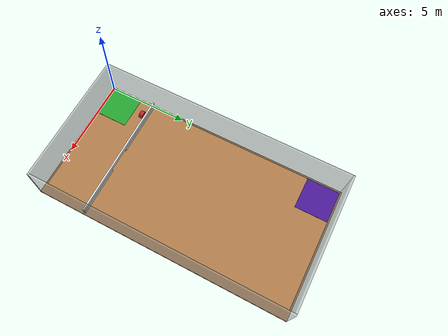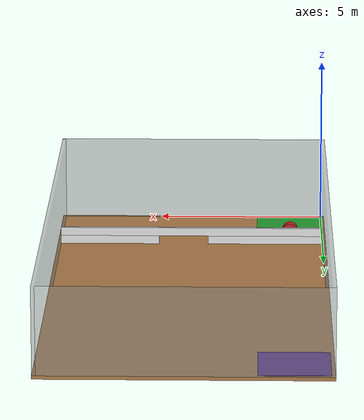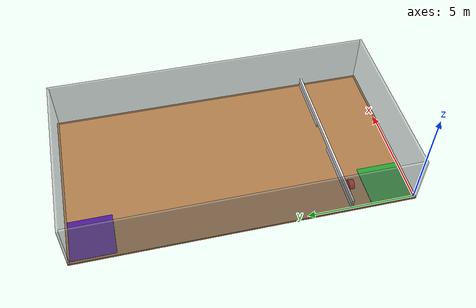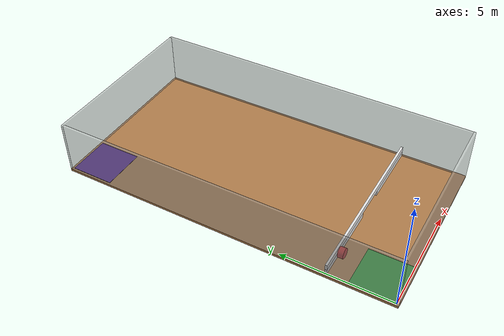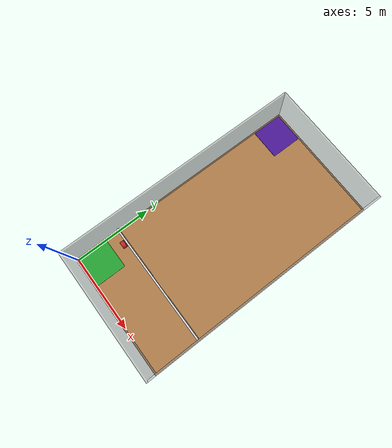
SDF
<sdf version="1.7">
 <world name="default">
  <light name="sun" type="directional">
   <pose>0 0 10 0 -0 0</pose>
   <diffuse>0.8 0.8 0.8 1</diffuse>
   <specular>0.2 0.2 0.2 1</specular>
   <attenuation>
    <range>1000</range>
    <constant>0.9</constant>
    <linear>0.01</linear>
    <quadratic>0.001</quadratic>
   </attenuation>
   <direction>-0.5 0.1 -0.9</direction>
   <spot><inner_angle>0</inner_angle><outer_angle>0</outer_angle><falloff>0</falloff></spot>
  </light>
  <physics name="default_physics" default="0" type="ode">
   <ode>
    <solver>
     <type>quick</type>
     <iters>10</iters>
     <sor>1.3</sor>
     <use_dynamic_moi_rescaling>0</use_dynamic_moi_rescaling>
    </solver>
    <constraints>
     <cfm>0</cfm>
     <erp>0.2</erp>
     <contact_max_correcting_vel>100</contact_max_correcting_vel>
     <contact_surface_layer>0.001</contact_surface_layer>
    </constraints>
   </ode>
   <max_step_size>0.004</max_step_size>
   <real_time_factor>1</real_time_factor>
   <real_time_update_rate>250</real_time_update_rate>
  </physics>
  <model name="box_1">
   <pose>4.05 -0.05 1.25 0 -0 0</pose>
   <static>1</static>
   <link name="link">
    <collision name="collision"><geometry><box><size>8.1 0.1 2.5</size></box></geometry></collision>
    <visual name="visual">
     <geometry><box><size>8.1 0.1 2.5</size></box></geometry>
     <material>
      <script><name>Gazebo/GreyTransparent</name><uri>file://media/materials/scripts/gazebo.material</uri></script>
     </material>
    </visual>
   </link>
  </model>
  <model name="box_2">
   <pose>8.05 7.8 1.25 0 -0 0</pose>
   <static>1</static>
   <link name="link">
    <collision name="collision"><geometry><box><size>0.1 15.6 2.5</size></box></geometry></collision>
    <visual name="visual">
     <geometry><box><size>0.1 15.6 2.5</size></box></geometry>
     <material>
      <script><name>Gazebo/GreyTransparent</name><uri>file://media/materials/scripts/gazebo.material</uri></script>
     </material>
    </visual>
   </link>
  </model>
  <model name="box_3">
   <pose>3.95 15.55 1.25 0 -0 0</pose>
   <static>1</static>
   <link name="link">
    <collision name="collision"><geometry><box><size>8.1 0.1 2.5</size></box></geometry></collision>
    <visual name="visual">
     <geometry><box><size>8.1 0.1 2.5</size></box></geometry>
     <material>
      <script><name>Gazebo/GreyTransparent</name><uri>file://media/materials/scripts/gazebo.material</uri></script>
     </material>
    </visual>
   </link>
  </model>
  <model name="box_4">
   <pose>-0.05 7.7 1.25 0 -0 0</pose>
   <static>1</static>
   <link name="link">
    <collision name="collision"><geometry><box><size>0.1 15.6 2.5</size></box></geometry></collision>
    <visual name="visual">
     <geometry><box><size>0.1 15.6 2.5</size></box></geometry>
     <material>
      <script><name>Gazebo/GreyTransparent</name><uri>file://media/materials/scripts/gazebo.material</uri></script>
     </material>
    </visual>
   </link>
  </model>
  <model name="box_5">
   <pose>4 7.75 -0.05 0 -0 0</pose>
   <static>1</static>
   <link name="link">
    <collision name="collision"><geometry><box><size>8.2 15.7 0.1</size></box></geometry></collision>
    <visual name="visual">
     <geometry><box><size>8.2 15.7 0.1</size></box></geometry>
     <material>
      <script><name>Gazebo/WoodFloor</name><uri>file://media/materials/scripts/gazebo.material</uri></script>
     </material>
    </visual>
   </link>
  </model>
  <model name="box_13">
   <pose>1 1 0.005 0 -0 0</pose>
   <static>1</static>
   <link name="link">
    <collision name="collision"><geometry><box><size>2 2 0.01</size></box></geometry></collision>
    <visual name="visual">
     <geometry><box><size>2 2 0.01</size></box></geometry>
     <material>
      <script><name>Gazebo/Green</name><uri>file://media/materials/scripts/gazebo.material</uri></script>
     </material>
    </visual>
   </link>
  </model>
  <model name="box_14">
   <pose>1.0055 14.491 0.005 0 -0 0</pose>
   <static>1</static>
   <link name="link">
    <collision name="collision"><geometry><box><size>2 2 0.01</size></box></geometry></collision>
    <visual name="visual">
     <geometry><box><size>2 2 0.01</size></box></geometry>
     <material>
      <script><name>Gazebo/Indigo</name><uri>file://media/materials/scripts/gazebo.material</uri></script>
     </material>
    </visual>
   </link>
  </model>
  <model name="box_15">
   <pose>4 2.95 0.375 0 -0 0</pose>
   <static>1</static>
   <link name="link">
    <collision name="collision"><geometry><box><size>8 0.1 0.25</size></box></geometry></collision>
    <visual name="visual">
     <geometry><box><size>8 0.1 0.25</size></box></geometry>
     <material>
      <script><name>Gazebo/White</name><uri>file://media/materials/scripts/gazebo.material</uri></script>
     </material>
    </visual>
   </link>
  </model>
  <model name="box_15_h1">
   <pose>1.75 2.95 0.125 0 -0 0</pose>
   <static>1</static>
   <link name="link">
    <collision name="collision"><geometry><box><size>3.5 0.1 0.25</size></box></geometry></collision>
    <visual name="visual">
     <geometry><box><size>3.5 0.1 0.25</size></box></geometry>
     <material>
      <script><name>Gazebo/White</name><uri>file://media/materials/scripts/gazebo.material</uri></script>
     </material>
    </visual>
   </link>
  </model>
  <model name="box_15_h2">
   <pose>6.5 2.95 0.125 0 -0 0</pose>
   <static>1</static>
   <link name="link">
    <collision name="collision"><geometry><box><size>3 0.1 0.25</size></box></geometry></collision>
    <visual name="visual">
     <geometry><box><size>3 0.1 0.25</size></box></geometry>
     <material>
      <script><name>Gazebo/White</name><uri>file://media/materials/scripts/gazebo.material</uri></script>
     </material>
    </visual>
   </link>
  </model>
  <model name="box_21">
   <pose>1.75 2.95 1 0 -0 0</pose>
   <static>1</static>
   <link name="link">
    <collision name="collision"><geometry><box><size>1.5 0.1 1</size></box></geometry></collision>
    <visual name="visual">
     <geometry><box><size>1.5 0.1 1</size></box></geometry>
     <material>
      <script><name>Gazebo/Grey</name><uri>file://media/materials/scripts/gazebo.material</uri></script>
     </material>
     <transparency>1</transparency>
    </visual>
   </link>
  </model>
  <model name="box_22">
   <pose>4.25 2.95 1 0 -0 0</pose>
   <static>1</static>
   <link name="link">
    <collision name="collision"><geometry><box><size>1.5 0.1 1</size></box></geometry></collision>
    <visual name="visual">
     <geometry><box><size>1.5 0.1 1</size></box></geometry>
     <material>
      <script><name>Gazebo/Grey</name><uri>file://media/materials/scripts/gazebo.material</uri></script>
     </material>
     <transparency>1</transparency>
    </visual>
   </link>
  </model>
  <gravity>0 0 -9.8066</gravity>
  <magnetic_field>6e-06 2.3e-05 -4.2e-05</magnetic_field>
  <atmosphere type="adiabatic"/>
  <scene><ambient>0.4 0.4 0.4 1</ambient><background>0.7 0.7 0.7 1</background><shadows>1</shadows></scene>
  <audio><device>default</device></audio>
  <spherical_coordinates>
   <surface_model>EARTH_WGS84</surface_model>
   <latitude_deg>0</latitude_deg>
   <longitude_deg>0</longitude_deg>
   <elevation>0</elevation>
   <heading_deg>0</heading_deg>
  </spherical_coordinates>
  <model name="unit_cylinder">
   <link name="link">
    <inertial>
     <mass>1</mass>
     <inertia><ixx>0.145833</ixx><ixy>0</ixy><ixz>0</ixz><iyy>0.145833</iyy><iyz>0</iyz><izz>0.125</izz></inertia>
    </inertial>
    <visual name="visual">
     <geometry><cylinder><radius>0.227569</radius><length>0.246076</length></cylinder></geometry>
     <material>
      <script><name>Gazebo/Red</name><uri>file://media/materials/scripts/gazebo.material</uri></script>
      <shader type="pixel"><normal_map>__default__</normal_map></shader>
      <ambient>1 0 0 1</ambient>
      <diffuse>1 0 0 1</diffuse>
      <specular>0.1 0.1 0.1 1</specular>
      <emissive>0 0 0 1</emissive>
     </material>
    </visual>
    <collision name="collision">
     <geometry><cylinder><radius>0.227569</radius><length>0.246076</length></cylinder></geometry>
     <surface>
      <friction>
       <ode><mu>1</mu><mu2>1</mu2><fdir1>0 0 0</fdir1><slip1>0</slip1><slip2>0</slip2></ode>
       <torsional>
        <coefficient>1</coefficient>
        <patch_radius>0</patch_radius>
        <surface_radius>0</surface_radius>
        <use_patch_radius>1</use_patch_radius>
        <ode><slip>0</slip></ode>
       </torsional>
      </friction>
      <bounce><restitution_coefficient>0</restitution_coefficient><threshold>1e+06</threshold></bounce>
      <contact>
       <collide_without_contact>0</collide_without_contact>
       <collide_without_contact_bitmask>1</collide_without_contact_bitmask>
       <collide_bitmask>1</collide_bitmask>
       <ode>
        <soft_cfm>0</soft_cfm>
        <soft_erp>0.2</soft_erp>
        <kp>1e+13</kp>
        <kd>1</kd>
        <max_vel>0.01</max_vel>
        <min_depth>0</min_depth>
       </ode>
       <bullet>
        <split_impulse>1</split_impulse>
        <split_impulse_penetration_threshold>-0.01</split_impulse_penetration_threshold>
        <soft_cfm>0</soft_cfm>
        <soft_erp>0.2</soft_erp>
        <kp>1e+13</kp>
        <kd>1</kd>
       </bullet>
      </contact>
     </surface>
    </collision>
   </link>
   <static>1</static>
   <pose>0.992167 2.71857 0.37342 1.54602 -8.2e-05 6.7e-05</pose>
  </model>
 </world>
</sdf>
